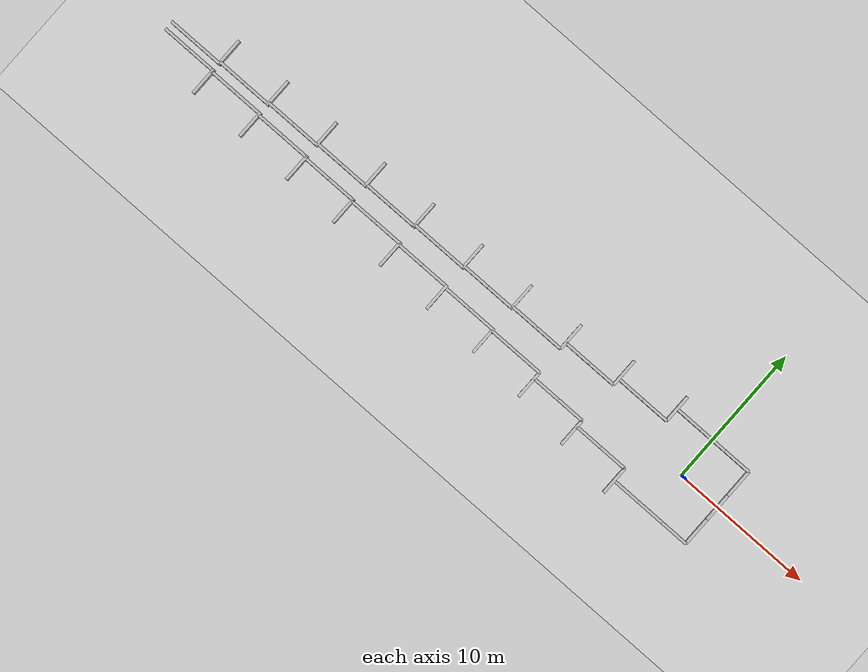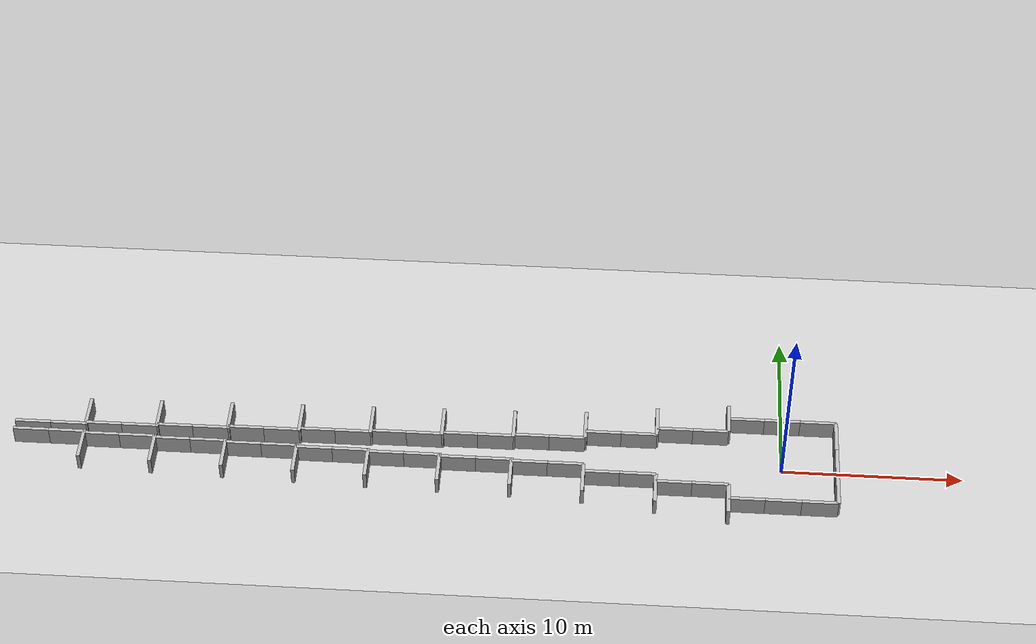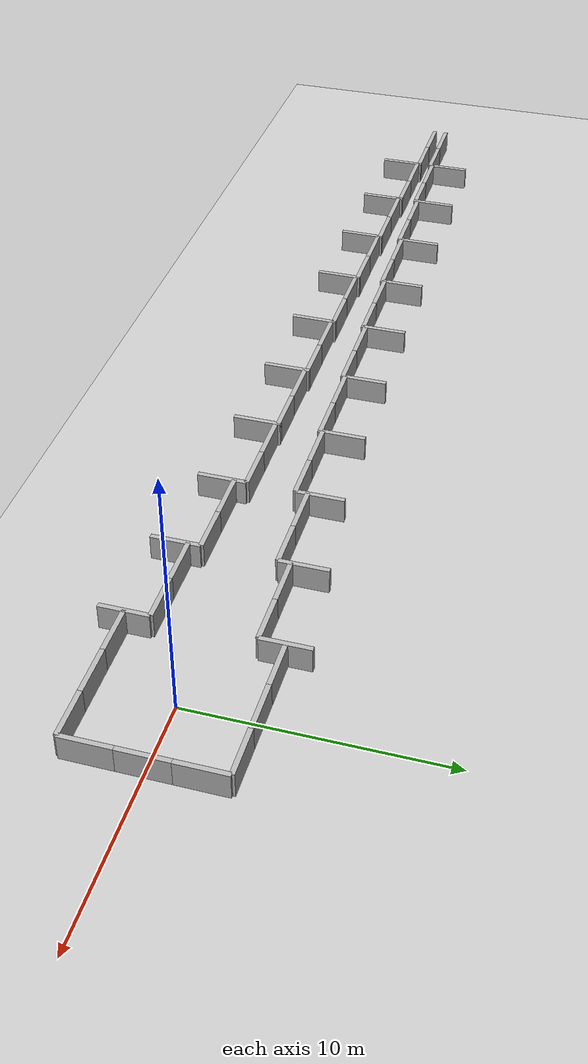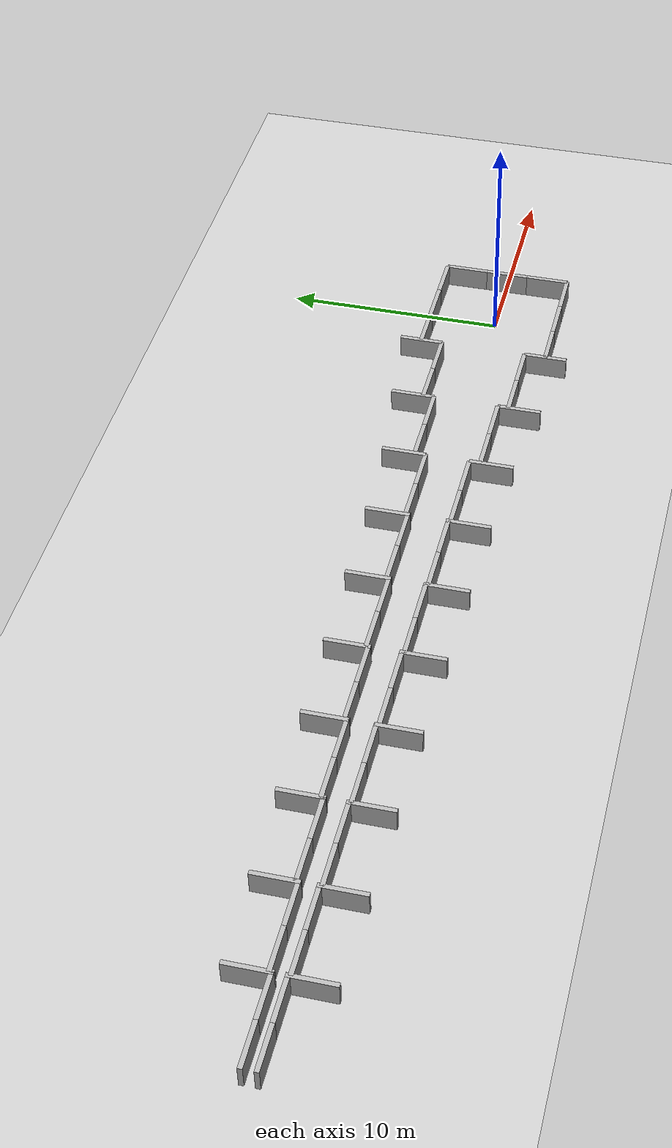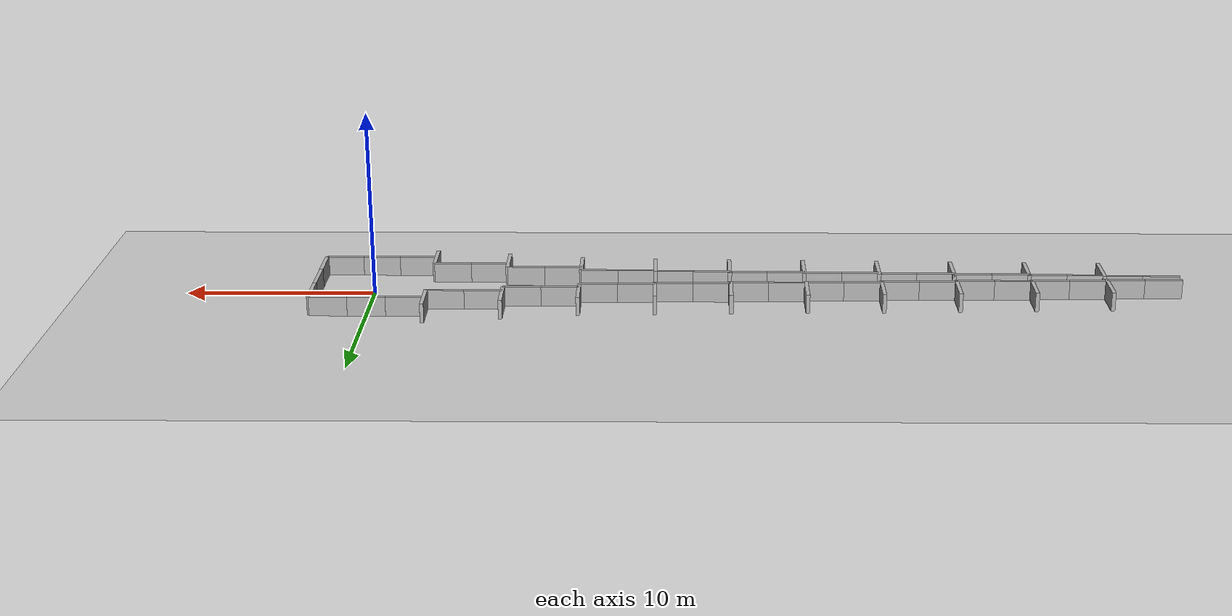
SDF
<sdf version="1.6">
 <world name="default">
  <model name="ground_plane">
   <static>1</static>
   <link name="link">
    <collision name="collision">
     <geometry><plane><normal>0 0 1</normal><size>100 100</size></plane></geometry>
     <surface>
      <contact><collide_bitmask>65535</collide_bitmask></contact>
      <friction><ode><mu>100</mu><mu2>50</mu2></ode></friction>
     </surface>
    </collision>
    <visual name="visual">
     <cast_shadows>0</cast_shadows>
     <geometry><plane><normal>0 0 1</normal><size>100 100</size></plane></geometry>
     <material>
      <script><uri>file://media/materials/scripts/gazebo.material</uri><name>Gazebo/Grey</name></script>
     </material>
    </visual>
   </link>
  </model>
  <gravity>0 0 -9.8</gravity>
  <magnetic_field>6e-06 2.3e-05 -4.2e-05</magnetic_field>
  <atmosphere type="adiabatic"/>
  <physics name="default_physics" default="0" type="ode">
   <max_step_size>0.001</max_step_size>
   <real_time_factor>1</real_time_factor>
   <real_time_update_rate>1000</real_time_update_rate>
  </physics>
  <scene><ambient>0.4 0.4 0.4 1</ambient><background>0.7 0.7 0.7 1</background><shadows>1</shadows></scene>
  <spherical_coordinates>
   <surface_model>EARTH_WGS84</surface_model>
   <latitude_deg>0</latitude_deg>
   <longitude_deg>0</longitude_deg>
   <elevation>0</elevation>
   <heading_deg>0</heading_deg>
  </spherical_coordinates>
  <light name="user_directional_light_0" type="directional">
   <pose>0.351978 -0.363043 1 0 -0 0</pose>
   <diffuse>0.5 0.5 0.5 1</diffuse>
   <specular>0.1 0.1 0.1 1</specular>
   <direction>0.1 0.1 -0.9</direction>
   <attenuation>
    <range>20</range>
    <constant>0.5</constant>
    <linear>0.01</linear>
    <quadratic>0.001</quadratic>
   </attenuation>
  </light>
  <model name="Color Tutorial Model">
   <static>1</static>
   <link name="grating">
    <collision name="body_collision"><geometry><box><size>2 0.2 2</size></box></geometry></collision>
    <visual name="body_visual">
     <geometry><box><size>2 0.2 2</size></box></geometry>
     <material>
      <script>
       <uri>/home/neuro/.gazebo/models/grating_wall/materials/scripts/</uri>
       <uri>/home/neuro/.gazebo/models/grating_wall/materials/scripts/</uri>
       <name>RepeatedTexture</name>
      </script>
     </material>
    </visual>
   </link>
   <pose>0 3 0 0 -0 0</pose>
  </model>
  <model name="Color Tutorial Model_clone">
   <static>1</static>
   <link name="grating">
    <collision name="body_collision"><geometry><box><size>2 0.2 2</size></box></geometry></collision>
    <visual name="body_visual">
     <geometry><box><size>2 0.2 2</size></box></geometry>
     <material>
      <script>
       <uri>/home/neuro/.gazebo/models/grating_wall/materials/scripts/</uri>
       <uri>/home/neuro/.gazebo/models/grating_wall/materials/scripts/</uri>
       <name>RepeatedTexture</name>
      </script>
     </material>
    </visual>
   </link>
   <pose>-2 3 0 0 -0 0</pose>
  </model>
  <model name="Color Tutorial Model_clone_0">
   <static>1</static>
   <link name="grating">
    <collision name="body_collision"><geometry><box><size>2 0.2 2</size></box></geometry></collision>
    <visual name="body_visual">
     <geometry><box><size>2 0.2 2</size></box></geometry>
     <material>
      <script>
       <uri>/home/neuro/.gazebo/models/grating_wall/materials/scripts/</uri>
       <uri>/home/neuro/.gazebo/models/grating_wall/materials/scripts/</uri>
       <name>RepeatedTexture</name>
      </script>
     </material>
    </visual>
   </link>
   <pose>2 3 0 0 -0 0</pose>
  </model>
  <model name="Color Tutorial Model_clone_1">
   <static>1</static>
   <link name="grating">
    <collision name="body_collision"><geometry><box><size>2 0.2 2</size></box></geometry></collision>
    <visual name="body_visual">
     <geometry><box><size>2 0.2 2</size></box></geometry>
     <material>
      <script>
       <uri>/home/neuro/.gazebo/models/grating_wall/materials/scripts/</uri>
       <uri>/home/neuro/.gazebo/models/grating_wall/materials/scripts/</uri>
       <name>RepeatedTexture</name>
      </script>
     </material>
    </visual>
   </link>
   <pose>0 -3 0 0 -0 0</pose>
  </model>
  <model name="Color Tutorial Model_clone_2">
   <static>1</static>
   <link name="grating">
    <collision name="body_collision"><geometry><box><size>2 0.2 2</size></box></geometry></collision>
    <visual name="body_visual">
     <geometry><box><size>2 0.2 2</size></box></geometry>
     <material>
      <script>
       <uri>/home/neuro/.gazebo/models/grating_wall/materials/scripts/</uri>
       <uri>/home/neuro/.gazebo/models/grating_wall/materials/scripts/</uri>
       <name>RepeatedTexture</name>
      </script>
     </material>
    </visual>
   </link>
   <pose>-2 -3 0 0 -0 0</pose>
  </model>
  <model name="Color Tutorial Model_clone_3">
   <static>1</static>
   <link name="grating">
    <collision name="body_collision"><geometry><box><size>2 0.2 2</size></box></geometry></collision>
    <visual name="body_visual">
     <geometry><box><size>2 0.2 2</size></box></geometry>
     <material>
      <script>
       <uri>/home/neuro/.gazebo/models/grating_wall/materials/scripts/</uri>
       <uri>/home/neuro/.gazebo/models/grating_wall/materials/scripts/</uri>
       <name>RepeatedTexture</name>
      </script>
     </material>
    </visual>
   </link>
   <pose>2 -3 0 0 -0 0</pose>
  </model>
  <model name="Color Tutorial Model_clone_4">
   <static>1</static>
   <link name="grating">
    <collision name="body_collision"><geometry><box><size>2 0.2 2</size></box></geometry></collision>
    <visual name="body_visual">
     <geometry><box><size>2 0.2 2</size></box></geometry>
     <material>
      <script>
       <uri>/home/neuro/.gazebo/models/grating_wall/materials/scripts/</uri>
       <uri>/home/neuro/.gazebo/models/grating_wall/materials/scripts/</uri>
       <name>RepeatedTexture</name>
      </script>
     </material>
    </visual>
   </link>
   <pose>-3 -3 0 0 -0 1.57</pose>
  </model>
  <model name="Color Tutorial Model_clone_4_clone">
   <static>1</static>
   <link name="grating">
    <collision name="body_collision"><geometry><box><size>2 0.2 2</size></box></geometry></collision>
    <visual name="body_visual">
     <geometry><box><size>2 0.2 2</size></box></geometry>
     <material>
      <script>
       <uri>/home/neuro/.gazebo/models/grating_wall/materials/scripts/</uri>
       <uri>/home/neuro/.gazebo/models/grating_wall/materials/scripts/</uri>
       <name>RepeatedTexture</name>
      </script>
     </material>
    </visual>
   </link>
   <pose>-4 2 0 0 0 -3.14159</pose>
  </model>
  <model name="Color Tutorial Model_clone_4_clone_0">
   <static>1</static>
   <link name="grating">
    <collision name="body_collision"><geometry><box><size>2 0.2 2</size></box></geometry></collision>
    <visual name="body_visual">
     <geometry><box><size>2 0.2 2</size></box></geometry>
     <material>
      <script>
       <uri>/home/neuro/.gazebo/models/grating_wall/materials/scripts/</uri>
       <uri>/home/neuro/.gazebo/models/grating_wall/materials/scripts/</uri>
       <name>RepeatedTexture</name>
      </script>
     </material>
    </visual>
   </link>
   <pose>-3 3 0 0 -0 1.5708</pose>
  </model>
  <model name="Color Tutorial Model_clone_4_clone_clone">
   <static>1</static>
   <link name="grating">
    <collision name="body_collision"><geometry><box><size>2 0.2 2</size></box></geometry></collision>
    <visual name="body_visual">
     <geometry><box><size>2 0.2 2</size></box></geometry>
     <material>
      <script>
       <uri>/home/neuro/.gazebo/models/grating_wall/materials/scripts/</uri>
       <uri>/home/neuro/.gazebo/models/grating_wall/materials/scripts/</uri>
       <name>RepeatedTexture</name>
      </script>
     </material>
    </visual>
   </link>
   <pose>3 -2 0 0 -0 1.5708</pose>
  </model>
  <model name="Color Tutorial Model_clone_4_clone_clone_0">
   <static>1</static>
   <link name="grating">
    <collision name="body_collision"><geometry><box><size>2 0.2 2</size></box></geometry></collision>
    <visual name="body_visual">
     <geometry><box><size>2 0.2 2</size></box></geometry>
     <material>
      <script>
       <uri>/home/neuro/.gazebo/models/grating_wall/materials/scripts/</uri>
       <uri>/home/neuro/.gazebo/models/grating_wall/materials/scripts/</uri>
       <name>RepeatedTexture</name>
      </script>
     </material>
    </visual>
   </link>
   <pose>3 0 0 0 -0 1.5708</pose>
  </model>
  <model name="Color Tutorial Model_clone_4_clone_clone_1">
   <static>1</static>
   <link name="grating">
    <collision name="body_collision"><geometry><box><size>2 0.2 2</size></box></geometry></collision>
    <visual name="body_visual">
     <geometry><box><size>2 0.2 2</size></box></geometry>
     <material>
      <script>
       <uri>/home/neuro/.gazebo/models/grating_wall/materials/scripts/</uri>
       <uri>/home/neuro/.gazebo/models/grating_wall/materials/scripts/</uri>
       <name>RepeatedTexture</name>
      </script>
     </material>
    </visual>
   </link>
   <pose>3 2 0 0 -0 1.5708</pose>
  </model>
  <model name="Color Tutorial Model_clone_4_clone_clone_2">
   <static>1</static>
   <link name="grating">
    <collision name="body_collision"><geometry><box><size>2 0.2 2</size></box></geometry></collision>
    <visual name="body_visual">
     <geometry><box><size>2 0.2 2</size></box></geometry>
     <material>
      <script>
       <uri>/home/neuro/.gazebo/models/grating_wall/materials/scripts/</uri>
       <uri>/home/neuro/.gazebo/models/grating_wall/materials/scripts/</uri>
       <name>RepeatedTexture</name>
      </script>
     </material>
    </visual>
   </link>
   <pose>-4 -2 0 0 0 -3.14159</pose>
  </model>
  <model name="Color Tutorial Model_clone_4_clone_clone_3">
   <static>1</static>
   <link name="grating">
    <collision name="body_collision"><geometry><box><size>2 0.2 2</size></box></geometry></collision>
    <visual name="body_visual">
     <geometry><box><size>2 0.2 2</size></box></geometry>
     <material>
      <script>
       <uri>/home/neuro/.gazebo/models/grating_wall/materials/scripts/</uri>
       <uri>/home/neuro/.gazebo/models/grating_wall/materials/scripts/</uri>
       <name>RepeatedTexture</name>
      </script>
     </material>
    </visual>
   </link>
   <pose>-6 -2 0 0 0 -3.14159</pose>
  </model>
  <model name="Color Tutorial Model_clone_4_clone_clone_4">
   <static>1</static>
   <link name="grating">
    <collision name="body_collision"><geometry><box><size>2 0.2 2</size></box></geometry></collision>
    <visual name="body_visual">
     <geometry><box><size>2 0.2 2</size></box></geometry>
     <material>
      <script>
       <uri>/home/neuro/.gazebo/models/grating_wall/materials/scripts/</uri>
       <uri>/home/neuro/.gazebo/models/grating_wall/materials/scripts/</uri>
       <name>RepeatedTexture</name>
      </script>
     </material>
    </visual>
   </link>
   <pose>-6 2 0 0 0 -3.14159</pose>
  </model>
  <model name="Color Tutorial Model_clone_4_clone_1">
   <static>1</static>
   <link name="grating">
    <collision name="body_collision"><geometry><box><size>2 0.2 2</size></box></geometry></collision>
    <visual name="body_visual">
     <geometry><box><size>2 0.2 2</size></box></geometry>
     <material>
      <script>
       <uri>/home/neuro/.gazebo/models/grating_wall/materials/scripts/</uri>
       <uri>/home/neuro/.gazebo/models/grating_wall/materials/scripts/</uri>
       <name>RepeatedTexture</name>
      </script>
     </material>
    </visual>
   </link>
   <pose>-7 -2.5 0 0 -0 1.57</pose>
  </model>
  <model name="Color Tutorial Model_clone_4_clone_2">
   <static>1</static>
   <link name="grating">
    <collision name="body_collision"><geometry><box><size>2 0.2 2</size></box></geometry></collision>
    <visual name="body_visual">
     <geometry><box><size>2 0.2 2</size></box></geometry>
     <material>
      <script>
       <uri>/home/neuro/.gazebo/models/grating_wall/materials/scripts/</uri>
       <uri>/home/neuro/.gazebo/models/grating_wall/materials/scripts/</uri>
       <name>RepeatedTexture</name>
      </script>
     </material>
    </visual>
   </link>
   <pose>-7 2.5 0 0 -0 1.57</pose>
  </model>
  <model name="Color Tutorial Model_clone_4_clone_clone_3_clone">
   <static>1</static>
   <link name="grating">
    <collision name="body_collision"><geometry><box><size>2 0.2 2</size></box></geometry></collision>
    <visual name="body_visual">
     <geometry><box><size>2 0.2 2</size></box></geometry>
     <material>
      <script>
       <uri>/home/neuro/.gazebo/models/grating_wall/materials/scripts/</uri>
       <uri>/home/neuro/.gazebo/models/grating_wall/materials/scripts/</uri>
       <name>RepeatedTexture</name>
      </script>
     </material>
    </visual>
   </link>
   <pose>-8 -1.5 0 0 0 -3.14159</pose>
  </model>
  <model name="Color Tutorial Model_clone_4_clone_clone_3_clone_0">
   <static>1</static>
   <link name="grating">
    <collision name="body_collision"><geometry><box><size>2 0.2 2</size></box></geometry></collision>
    <visual name="body_visual">
     <geometry><box><size>2 0.2 2</size></box></geometry>
     <material>
      <script>
       <uri>/home/neuro/.gazebo/models/grating_wall/materials/scripts/</uri>
       <uri>/home/neuro/.gazebo/models/grating_wall/materials/scripts/</uri>
       <name>RepeatedTexture</name>
      </script>
     </material>
    </visual>
   </link>
   <pose>-8 1.5 0 0 0 -3.14159</pose>
  </model>
  <model name="Color Tutorial Model_clone_4_clone_clone_3_clone_1">
   <static>1</static>
   <link name="grating">
    <collision name="body_collision"><geometry><box><size>2 0.2 2</size></box></geometry></collision>
    <visual name="body_visual">
     <geometry><box><size>2 0.2 2</size></box></geometry>
     <material>
      <script>
       <uri>/home/neuro/.gazebo/models/grating_wall/materials/scripts/</uri>
       <uri>/home/neuro/.gazebo/models/grating_wall/materials/scripts/</uri>
       <name>RepeatedTexture</name>
      </script>
     </material>
    </visual>
   </link>
   <pose>-10 1.5 0 0 0 -3.14159</pose>
  </model>
  <model name="Color Tutorial Model_clone_4_clone_clone_3_clone_2">
   <static>1</static>
   <link name="grating">
    <collision name="body_collision"><geometry><box><size>2 0.2 2</size></box></geometry></collision>
    <visual name="body_visual">
     <geometry><box><size>2 0.2 2</size></box></geometry>
     <material>
      <script>
       <uri>/home/neuro/.gazebo/models/grating_wall/materials/scripts/</uri>
       <uri>/home/neuro/.gazebo/models/grating_wall/materials/scripts/</uri>
       <name>RepeatedTexture</name>
      </script>
     </material>
    </visual>
   </link>
   <pose>-10 -1.5 0 0 0 -3.14159</pose>
  </model>
  <model name="Color Tutorial Model_clone_4_clone_1_clone">
   <static>1</static>
   <link name="grating">
    <collision name="body_collision"><geometry><box><size>2 0.2 2</size></box></geometry></collision>
    <visual name="body_visual">
     <geometry><box><size>2 0.2 2</size></box></geometry>
     <material>
      <script>
       <uri>/home/neuro/.gazebo/models/grating_wall/materials/scripts/</uri>
       <uri>/home/neuro/.gazebo/models/grating_wall/materials/scripts/</uri>
       <name>RepeatedTexture</name>
      </script>
     </material>
    </visual>
   </link>
   <pose>-11 -2 0 0 -0 1.57</pose>
  </model>
  <model name="Color Tutorial Model_clone_4_clone_1_clone_0">
   <static>1</static>
   <link name="grating">
    <collision name="body_collision"><geometry><box><size>2 0.2 2</size></box></geometry></collision>
    <visual name="body_visual">
     <geometry><box><size>2 0.2 2</size></box></geometry>
     <material>
      <script>
       <uri>/home/neuro/.gazebo/models/grating_wall/materials/scripts/</uri>
       <uri>/home/neuro/.gazebo/models/grating_wall/materials/scripts/</uri>
       <name>RepeatedTexture</name>
      </script>
     </material>
    </visual>
   </link>
   <pose>-11 2 0 0 -0 1.57</pose>
  </model>
  <model name="Color Tutorial Model_clone_4_clone_clone_3_clone_2_clone">
   <static>1</static>
   <link name="grating">
    <collision name="body_collision"><geometry><box><size>2 0.2 2</size></box></geometry></collision>
    <visual name="body_visual">
     <geometry><box><size>2 0.2 2</size></box></geometry>
     <material>
      <script>
       <uri>/home/neuro/.gazebo/models/grating_wall/materials/scripts/</uri>
       <uri>/home/neuro/.gazebo/models/grating_wall/materials/scripts/</uri>
       <name>RepeatedTexture</name>
      </script>
     </material>
    </visual>
   </link>
   <pose>-12 -1 0 0 0 -3.14159</pose>
  </model>
  <model name="Color Tutorial Model_clone_4_clone_clone_3_clone_2_clone_0">
   <static>1</static>
   <link name="grating">
    <collision name="body_collision"><geometry><box><size>2 0.2 2</size></box></geometry></collision>
    <visual name="body_visual">
     <geometry><box><size>2 0.2 2</size></box></geometry>
     <material>
      <script>
       <uri>/home/neuro/.gazebo/models/grating_wall/materials/scripts/</uri>
       <uri>/home/neuro/.gazebo/models/grating_wall/materials/scripts/</uri>
       <name>RepeatedTexture</name>
      </script>
     </material>
    </visual>
   </link>
   <pose>-12 1 0 0 0 -3.14159</pose>
  </model>
  <model name="Color Tutorial Model_clone_4_clone_clone_3_clone_2_clone_1">
   <static>1</static>
   <link name="grating">
    <collision name="body_collision"><geometry><box><size>2 0.2 2</size></box></geometry></collision>
    <visual name="body_visual">
     <geometry><box><size>2 0.2 2</size></box></geometry>
     <material>
      <script>
       <uri>/home/neuro/.gazebo/models/grating_wall/materials/scripts/</uri>
       <uri>/home/neuro/.gazebo/models/grating_wall/materials/scripts/</uri>
       <name>RepeatedTexture</name>
      </script>
     </material>
    </visual>
   </link>
   <pose>-14 -1 0 0 0 -3.14159</pose>
  </model>
  <model name="Color Tutorial Model_clone_4_clone_clone_3_clone_2_clone_2">
   <static>1</static>
   <link name="grating">
    <collision name="body_collision"><geometry><box><size>2 0.2 2</size></box></geometry></collision>
    <visual name="body_visual">
     <geometry><box><size>2 0.2 2</size></box></geometry>
     <material>
      <script>
       <uri>/home/neuro/.gazebo/models/grating_wall/materials/scripts/</uri>
       <uri>/home/neuro/.gazebo/models/grating_wall/materials/scripts/</uri>
       <name>RepeatedTexture</name>
      </script>
     </material>
    </visual>
   </link>
   <pose>-14 1 0 0 0 -3.14159</pose>
  </model>
  <model name="Color Tutorial Model_clone_4_clone_1_clone_clone">
   <static>1</static>
   <link name="grating">
    <collision name="body_collision"><geometry><box><size>2 0.2 2</size></box></geometry></collision>
    <visual name="body_visual">
     <geometry><box><size>2 0.2 2</size></box></geometry>
     <material>
      <script>
       <uri>/home/neuro/.gazebo/models/grating_wall/materials/scripts/</uri>
       <uri>/home/neuro/.gazebo/models/grating_wall/materials/scripts/</uri>
       <name>RepeatedTexture</name>
      </script>
     </material>
    </visual>
   </link>
   <pose>-15 -1.8 0 0 -0 1.57</pose>
  </model>
  <model name="Color Tutorial Model_clone_4_clone_1_clone_clone_0">
   <static>1</static>
   <link name="grating">
    <collision name="body_collision"><geometry><box><size>2 0.2 2</size></box></geometry></collision>
    <visual name="body_visual">
     <geometry><box><size>2 0.2 2</size></box></geometry>
     <material>
      <script>
       <uri>/home/neuro/.gazebo/models/grating_wall/materials/scripts/</uri>
       <uri>/home/neuro/.gazebo/models/grating_wall/materials/scripts/</uri>
       <name>RepeatedTexture</name>
      </script>
     </material>
    </visual>
   </link>
   <pose>-15 1.8 0 0 -0 1.57</pose>
  </model>
  <model name="Color Tutorial Model_clone_4_clone_clone_3_clone_2_clone_1_clone">
   <static>1</static>
   <link name="grating">
    <collision name="body_collision"><geometry><box><size>2 0.2 2</size></box></geometry></collision>
    <visual name="body_visual">
     <geometry><box><size>2 0.2 2</size></box></geometry>
     <material>
      <script>
       <uri>/home/neuro/.gazebo/models/grating_wall/materials/scripts/</uri>
       <uri>/home/neuro/.gazebo/models/grating_wall/materials/scripts/</uri>
       <name>RepeatedTexture</name>
      </script>
     </material>
    </visual>
   </link>
   <pose>-16 -0.9 0 0 0 -3.14159</pose>
  </model>
  <model name="Color Tutorial Model_clone_4_clone_clone_3_clone_2_clone_1_clone_0">
   <static>1</static>
   <link name="grating">
    <collision name="body_collision"><geometry><box><size>2 0.2 2</size></box></geometry></collision>
    <visual name="body_visual">
     <geometry><box><size>2 0.2 2</size></box></geometry>
     <material>
      <script>
       <uri>/home/neuro/.gazebo/models/grating_wall/materials/scripts/</uri>
       <uri>/home/neuro/.gazebo/models/grating_wall/materials/scripts/</uri>
       <name>RepeatedTexture</name>
      </script>
     </material>
    </visual>
   </link>
   <pose>-16 0.9 0 0 0 -3.14159</pose>
  </model>
  <model name="Color Tutorial Model_clone_4_clone_clone_3_clone_2_clone_1_clone_1">
   <static>1</static>
   <link name="grating">
    <collision name="body_collision"><geometry><box><size>2 0.2 2</size></box></geometry></collision>
    <visual name="body_visual">
     <geometry><box><size>2 0.2 2</size></box></geometry>
     <material>
      <script>
       <uri>/home/neuro/.gazebo/models/grating_wall/materials/scripts/</uri>
       <uri>/home/neuro/.gazebo/models/grating_wall/materials/scripts/</uri>
       <name>RepeatedTexture</name>
      </script>
     </material>
    </visual>
   </link>
   <pose>-18 -0.9 0 0 0 -3.14159</pose>
  </model>
  <model name="Color Tutorial Model_clone_4_clone_clone_3_clone_2_clone_1_clone_2">
   <static>1</static>
   <link name="grating">
    <collision name="body_collision"><geometry><box><size>2 0.2 2</size></box></geometry></collision>
    <visual name="body_visual">
     <geometry><box><size>2 0.2 2</size></box></geometry>
     <material>
      <script>
       <uri>/home/neuro/.gazebo/models/grating_wall/materials/scripts/</uri>
       <uri>/home/neuro/.gazebo/models/grating_wall/materials/scripts/</uri>
       <name>RepeatedTexture</name>
      </script>
     </material>
    </visual>
   </link>
   <pose>-18 0.9 0 0 0 -3.14159</pose>
  </model>
  <model name="Color Tutorial Model_clone_4_clone_1_clone_clone_0_clone">
   <static>1</static>
   <link name="grating">
    <collision name="body_collision"><geometry><box><size>2 0.2 2</size></box></geometry></collision>
    <visual name="body_visual">
     <geometry><box><size>2 0.2 2</size></box></geometry>
     <material>
      <script>
       <uri>/home/neuro/.gazebo/models/grating_wall/materials/scripts/</uri>
       <uri>/home/neuro/.gazebo/models/grating_wall/materials/scripts/</uri>
       <name>RepeatedTexture</name>
      </script>
     </material>
    </visual>
   </link>
   <pose>-19 1.7 0 0 -0 1.57</pose>
  </model>
  <model name="Color Tutorial Model_clone_4_clone_1_clone_clone_0_clone_0">
   <static>1</static>
   <link name="grating">
    <collision name="body_collision"><geometry><box><size>2 0.2 2</size></box></geometry></collision>
    <visual name="body_visual">
     <geometry><box><size>2 0.2 2</size></box></geometry>
     <material>
      <script>
       <uri>/home/neuro/.gazebo/models/grating_wall/materials/scripts/</uri>
       <uri>/home/neuro/.gazebo/models/grating_wall/materials/scripts/</uri>
       <name>RepeatedTexture</name>
      </script>
     </material>
    </visual>
   </link>
   <pose>-19 -1.7 0 0 -0 1.57</pose>
  </model>
  <model name="Color Tutorial Model_clone_4_clone_clone_3_clone_2_clone_1_clone_1_clone">
   <static>1</static>
   <link name="grating">
    <collision name="body_collision"><geometry><box><size>2 0.2 2</size></box></geometry></collision>
    <visual name="body_visual">
     <geometry><box><size>2 0.2 2</size></box></geometry>
     <material>
      <script>
       <uri>/home/neuro/.gazebo/models/grating_wall/materials/scripts/</uri>
       <uri>/home/neuro/.gazebo/models/grating_wall/materials/scripts/</uri>
       <name>RepeatedTexture</name>
      </script>
     </material>
    </visual>
   </link>
   <pose>-20 -0.8 0 0 0 -3.14159</pose>
  </model>
  <model name="Color Tutorial Model_clone_4_clone_clone_3_clone_2_clone_1_clone_1_clone_0">
   <static>1</static>
   <link name="grating">
    <collision name="body_collision"><geometry><box><size>2 0.2 2</size></box></geometry></collision>
    <visual name="body_visual">
     <geometry><box><size>2 0.2 2</size></box></geometry>
     <material>
      <script>
       <uri>/home/neuro/.gazebo/models/grating_wall/materials/scripts/</uri>
       <uri>/home/neuro/.gazebo/models/grating_wall/materials/scripts/</uri>
       <name>RepeatedTexture</name>
      </script>
     </material>
    </visual>
   </link>
   <pose>-20 0.8 0 0 0 -3.14159</pose>
  </model>
  <model name="Color Tutorial Model_clone_4_clone_clone_3_clone_2_clone_1_clone_1_clone_1">
   <static>1</static>
   <link name="grating">
    <collision name="body_collision"><geometry><box><size>2 0.2 2</size></box></geometry></collision>
    <visual name="body_visual">
     <geometry><box><size>2 0.2 2</size></box></geometry>
     <material>
      <script>
       <uri>/home/neuro/.gazebo/models/grating_wall/materials/scripts/</uri>
       <uri>/home/neuro/.gazebo/models/grating_wall/materials/scripts/</uri>
       <name>RepeatedTexture</name>
      </script>
     </material>
    </visual>
   </link>
   <pose>-22 -0.8 0 0 0 -3.14159</pose>
  </model>
  <model name="Color Tutorial Model_clone_4_clone_clone_3_clone_2_clone_1_clone_1_clone_2">
   <static>1</static>
   <link name="grating">
    <collision name="body_collision"><geometry><box><size>2 0.2 2</size></box></geometry></collision>
    <visual name="body_visual">
     <geometry><box><size>2 0.2 2</size></box></geometry>
     <material>
      <script>
       <uri>/home/neuro/.gazebo/models/grating_wall/materials/scripts/</uri>
       <uri>/home/neuro/.gazebo/models/grating_wall/materials/scripts/</uri>
       <name>RepeatedTexture</name>
      </script>
     </material>
    </visual>
   </link>
   <pose>-22 0.8 0 0 0 -3.14159</pose>
  </model>
  <model name="Color Tutorial Model_clone_4_clone_1_clone_clone_0_clone_clone_clone">
   <static>1</static>
   <link name="grating">
    <collision name="body_collision"><geometry><box><size>2 0.2 2</size></box></geometry></collision>
    <visual name="body_visual">
     <geometry><box><size>2 0.2 2</size></box></geometry>
     <material>
      <script>
       <uri>/home/neuro/.gazebo/models/grating_wall/materials/scripts/</uri>
       <uri>/home/neuro/.gazebo/models/grating_wall/materials/scripts/</uri>
       <name>RepeatedTexture</name>
      </script>
     </material>
    </visual>
   </link>
   <pose>-23 1.6 0 0 -0 1.57</pose>
  </model>
  <model name="Color Tutorial Model_clone_4_clone_1_clone_clone_0_clone_clone_clone_0">
   <static>1</static>
   <link name="grating">
    <collision name="body_collision"><geometry><box><size>2 0.2 2</size></box></geometry></collision>
    <visual name="body_visual">
     <geometry><box><size>2 0.2 2</size></box></geometry>
     <material>
      <script>
       <uri>/home/neuro/.gazebo/models/grating_wall/materials/scripts/</uri>
       <uri>/home/neuro/.gazebo/models/grating_wall/materials/scripts/</uri>
       <name>RepeatedTexture</name>
      </script>
     </material>
    </visual>
   </link>
   <pose>-23 -1.6 0 0 -0 1.57</pose>
  </model>
  <model name="Color Tutorial Model_clone_4_clone_clone_3_clone_2_clone_1_clone_1_clone_1_clone">
   <static>1</static>
   <link name="grating">
    <collision name="body_collision"><geometry><box><size>2 0.2 2</size></box></geometry></collision>
    <visual name="body_visual">
     <geometry><box><size>2 0.2 2</size></box></geometry>
     <material>
      <script>
       <uri>/home/neuro/.gazebo/models/grating_wall/materials/scripts/</uri>
       <uri>/home/neuro/.gazebo/models/grating_wall/materials/scripts/</uri>
       <name>RepeatedTexture</name>
      </script>
     </material>
    </visual>
   </link>
   <pose>-24 -0.7 0 0 0 -3.14159</pose>
  </model>
  <model name="Color Tutorial Model_clone_4_clone_clone_3_clone_2_clone_1_clone_1_clone_1_clone_0">
   <static>1</static>
   <link name="grating">
    <collision name="body_collision"><geometry><box><size>2 0.2 2</size></box></geometry></collision>
    <visual name="body_visual">
     <geometry><box><size>2 0.2 2</size></box></geometry>
     <material>
      <script>
       <uri>/home/neuro/.gazebo/models/grating_wall/materials/scripts/</uri>
       <uri>/home/neuro/.gazebo/models/grating_wall/materials/scripts/</uri>
       <name>RepeatedTexture</name>
      </script>
     </material>
    </visual>
   </link>
   <pose>-24 0.7 0 0 0 -3.14159</pose>
  </model>
  <model name="Color Tutorial Model_clone_4_clone_clone_3_clone_2_clone_1_clone_1_clone_1_clone_1">
   <static>1</static>
   <link name="grating">
    <collision name="body_collision"><geometry><box><size>2 0.2 2</size></box></geometry></collision>
    <visual name="body_visual">
     <geometry><box><size>2 0.2 2</size></box></geometry>
     <material>
      <script>
       <uri>/home/neuro/.gazebo/models/grating_wall/materials/scripts/</uri>
       <uri>/home/neuro/.gazebo/models/grating_wall/materials/scripts/</uri>
       <name>RepeatedTexture</name>
      </script>
     </material>
    </visual>
   </link>
   <pose>-26 -0.7 0 0 0 -3.14159</pose>
  </model>
  <model name="Color Tutorial Model_clone_4_clone_clone_3_clone_2_clone_1_clone_1_clone_1_clone_2">
   <static>1</static>
   <link name="grating">
    <collision name="body_collision"><geometry><box><size>2 0.2 2</size></box></geometry></collision>
    <visual name="body_visual">
     <geometry><box><size>2 0.2 2</size></box></geometry>
     <material>
      <script>
       <uri>/home/neuro/.gazebo/models/grating_wall/materials/scripts/</uri>
       <uri>/home/neuro/.gazebo/models/grating_wall/materials/scripts/</uri>
       <name>RepeatedTexture</name>
      </script>
     </material>
    </visual>
   </link>
   <pose>-26 0.7 0 0 0 -3.14159</pose>
  </model>
  <model name="Color Tutorial Model_clone_4_clone_1_clone_clone_0_clone_clone_clone_0_clone">
   <static>1</static>
   <link name="grating">
    <collision name="body_collision"><geometry><box><size>2 0.2 2</size></box></geometry></collision>
    <visual name="body_visual">
     <geometry><box><size>2 0.2 2</size></box></geometry>
     <material>
      <script>
       <uri>/home/neuro/.gazebo/models/grating_wall/materials/scripts/</uri>
       <uri>/home/neuro/.gazebo/models/grating_wall/materials/scripts/</uri>
       <name>RepeatedTexture</name>
      </script>
     </material>
    </visual>
   </link>
   <pose>-27 -1.5 0 0 -0 1.57</pose>
  </model>
  <model name="Color Tutorial Model_clone_4_clone_1_clone_clone_0_clone_clone_clone_0_clone_0">
   <static>1</static>
   <link name="grating">
    <collision name="body_collision"><geometry><box><size>2 0.2 2</size></box></geometry></collision>
    <visual name="body_visual">
     <geometry><box><size>2 0.2 2</size></box></geometry>
     <material>
      <script>
       <uri>/home/neuro/.gazebo/models/grating_wall/materials/scripts/</uri>
       <uri>/home/neuro/.gazebo/models/grating_wall/materials/scripts/</uri>
       <name>RepeatedTexture</name>
      </script>
     </material>
    </visual>
   </link>
   <pose>-27.0024 1.5 0 0 -0 1.57</pose>
  </model>
  <model name="Color Tutorial Model_clone_4_clone_clone_3_clone_2_clone_1_clone_1_clone_1_clone_1_clone">
   <static>1</static>
   <link name="grating">
    <collision name="body_collision"><geometry><box><size>2 0.2 2</size></box></geometry></collision>
    <visual name="body_visual">
     <geometry><box><size>2 0.2 2</size></box></geometry>
     <material>
      <script>
       <uri>/home/neuro/.gazebo/models/grating_wall/materials/scripts/</uri>
       <uri>/home/neuro/.gazebo/models/grating_wall/materials/scripts/</uri>
       <name>RepeatedTexture</name>
      </script>
     </material>
    </visual>
   </link>
   <pose>-28 -0.6 0 0 0 -3.14159</pose>
  </model>
  <model name="Color Tutorial Model_clone_4_clone_clone_3_clone_2_clone_1_clone_1_clone_1_clone_1_clone_0">
   <static>1</static>
   <link name="grating">
    <collision name="body_collision"><geometry><box><size>2 0.2 2</size></box></geometry></collision>
    <visual name="body_visual">
     <geometry><box><size>2 0.2 2</size></box></geometry>
     <material>
      <script>
       <uri>/home/neuro/.gazebo/models/grating_wall/materials/scripts/</uri>
       <uri>/home/neuro/.gazebo/models/grating_wall/materials/scripts/</uri>
       <name>RepeatedTexture</name>
      </script>
     </material>
    </visual>
   </link>
   <pose>-28 0.6 0 0 0 -3.14159</pose>
  </model>
  <model name="Color Tutorial Model_clone_4_clone_clone_3_clone_2_clone_1_clone_1_clone_1_clone_1_clone_1">
   <static>1</static>
   <link name="grating">
    <collision name="body_collision"><geometry><box><size>2 0.2 2</size></box></geometry></collision>
    <visual name="body_visual">
     <geometry><box><size>2 0.2 2</size></box></geometry>
     <material>
      <script>
       <uri>/home/neuro/.gazebo/models/grating_wall/materials/scripts/</uri>
       <uri>/home/neuro/.gazebo/models/grating_wall/materials/scripts/</uri>
       <name>RepeatedTexture</name>
      </script>
     </material>
    </visual>
   </link>
   <pose>-30 0.6 0 0 0 -3.14159</pose>
  </model>
  <model name="Color Tutorial Model_clone_4_clone_clone_3_clone_2_clone_1_clone_1_clone_1_clone_1_clone_2">
   <static>1</static>
   <link name="grating">
    <collision name="body_collision"><geometry><box><size>2 0.2 2</size></box></geometry></collision>
    <visual name="body_visual">
     <geometry><box><size>2 0.2 2</size></box></geometry>
     <material>
      <script>
       <uri>/home/neuro/.gazebo/models/grating_wall/materials/scripts/</uri>
       <uri>/home/neuro/.gazebo/models/grating_wall/materials/scripts/</uri>
       <name>RepeatedTexture</name>
      </script>
     </material>
    </visual>
   </link>
   <pose>-30 -0.6 0 0 0 -3.14159</pose>
  </model>
  <model name="Color Tutorial Model_clone_4_clone_1_clone_clone_0_clone_clone_clone_0_clone_0_clone">
   <static>1</static>
   <link name="grating">
    <collision name="body_collision"><geometry><box><size>2 0.2 2</size></box></geometry></collision>
    <visual name="body_visual">
     <geometry><box><size>2 0.2 2</size></box></geometry>
     <material>
      <script>
       <uri>/home/neuro/.gazebo/models/grating_wall/materials/scripts/</uri>
       <uri>/home/neuro/.gazebo/models/grating_wall/materials/scripts/</uri>
       <name>RepeatedTexture</name>
      </script>
     </material>
    </visual>
   </link>
   <pose>-31 1.4 0 0 -0 1.57</pose>
  </model>
  <model name="Color Tutorial Model_clone_4_clone_1_clone_clone_0_clone_clone_clone_0_clone_0_clone_0">
   <static>1</static>
   <link name="grating">
    <collision name="body_collision"><geometry><box><size>2 0.2 2</size></box></geometry></collision>
    <visual name="body_visual">
     <geometry><box><size>2 0.2 2</size></box></geometry>
     <material>
      <script>
       <uri>/home/neuro/.gazebo/models/grating_wall/materials/scripts/</uri>
       <uri>/home/neuro/.gazebo/models/grating_wall/materials/scripts/</uri>
       <name>RepeatedTexture</name>
      </script>
     </material>
    </visual>
   </link>
   <pose>-31 -1.4 0 0 -0 1.57</pose>
  </model>
  <model name="Color Tutorial Model_clone_4_clone_clone_3_clone_2_clone_1_clone_1_clone_1_clone_1_clone_2_clone">
   <static>1</static>
   <link name="grating">
    <collision name="body_collision"><geometry><box><size>2 0.2 2</size></box></geometry></collision>
    <visual name="body_visual">
     <geometry><box><size>2 0.2 2</size></box></geometry>
     <material>
      <script>
       <uri>/home/neuro/.gazebo/models/grating_wall/materials/scripts/</uri>
       <uri>/home/neuro/.gazebo/models/grating_wall/materials/scripts/</uri>
       <name>RepeatedTexture</name>
      </script>
     </material>
    </visual>
   </link>
   <pose>-32 -0.5 0 0 0 -3.14159</pose>
  </model>
  <model name="Color Tutorial Model_clone_4_clone_clone_3_clone_2_clone_1_clone_1_clone_1_clone_1_clone_2_clone_0">
   <static>1</static>
   <link name="grating">
    <collision name="body_collision"><geometry><box><size>2 0.2 2</size></box></geometry></collision>
    <visual name="body_visual">
     <geometry><box><size>2 0.2 2</size></box></geometry>
     <material>
      <script>
       <uri>/home/neuro/.gazebo/models/grating_wall/materials/scripts/</uri>
       <uri>/home/neuro/.gazebo/models/grating_wall/materials/scripts/</uri>
       <name>RepeatedTexture</name>
      </script>
     </material>
    </visual>
   </link>
   <pose>-32 0.5 0 0 0 -3.14159</pose>
  </model>
  <model name="Color Tutorial Model_clone_4_clone_clone_3_clone_2_clone_1_clone_1_clone_1_clone_1_clone_2_clone_1">
   <static>1</static>
   <link name="grating">
    <collision name="body_collision"><geometry><box><size>2 0.2 2</size></box></geometry></collision>
    <visual name="body_visual">
     <geometry><box><size>2 0.2 2</size></box></geometry>
     <material>
      <script>
       <uri>/home/neuro/.gazebo/models/grating_wall/materials/scripts/</uri>
       <uri>/home/neuro/.gazebo/models/grating_wall/materials/scripts/</uri>
       <name>RepeatedTexture</name>
      </script>
     </material>
    </visual>
   </link>
   <pose>-34 -0.5 0 0 0 -3.14159</pose>
  </model>
  <model name="Color Tutorial Model_clone_4_clone_clone_3_clone_2_clone_1_clone_1_clone_1_clone_1_clone_2_clone_2">
   <static>1</static>
   <link name="grating">
    <collision name="body_collision"><geometry><box><size>2 0.2 2</size></box></geometry></collision>
    <visual name="body_visual">
     <geometry><box><size>2 0.2 2</size></box></geometry>
     <material>
      <script>
       <uri>/home/neuro/.gazebo/models/grating_wall/materials/scripts/</uri>
       <uri>/home/neuro/.gazebo/models/grating_wall/materials/scripts/</uri>
       <name>RepeatedTexture</name>
      </script>
     </material>
    </visual>
   </link>
   <pose>-34 0.5 0 0 0 -3.14159</pose>
  </model>
  <model name="Color Tutorial Model_clone_4_clone_1_clone_clone_0_clone_clone_clone_0_clone_0_clone_0_clone">
   <static>1</static>
   <link name="grating">
    <collision name="body_collision"><geometry><box><size>2 0.2 2</size></box></geometry></collision>
    <visual name="body_visual">
     <geometry><box><size>2 0.2 2</size></box></geometry>
     <material>
      <script>
       <uri>/home/neuro/.gazebo/models/grating_wall/materials/scripts/</uri>
       <uri>/home/neuro/.gazebo/models/grating_wall/materials/scripts/</uri>
       <name>RepeatedTexture</name>
      </script>
     </material>
    </visual>
   </link>
   <pose>-35 -1.3 0 0 -0 1.57</pose>
  </model>
  <model name="Color Tutorial Model_clone_4_clone_1_clone_clone_0_clone_clone_clone_0_clone_0_clone_0_clone_0">
   <static>1</static>
   <link name="grating">
    <collision name="body_collision"><geometry><box><size>2 0.2 2</size></box></geometry></collision>
    <visual name="body_visual">
     <geometry><box><size>2 0.2 2</size></box></geometry>
     <material>
      <script>
       <uri>/home/neuro/.gazebo/models/grating_wall/materials/scripts/</uri>
       <uri>/home/neuro/.gazebo/models/grating_wall/materials/scripts/</uri>
       <name>RepeatedTexture</name>
      </script>
     </material>
    </visual>
   </link>
   <pose>-35 1.3 0 0 -0 1.57</pose>
  </model>
  <model name="Color Tutorial Model_clone_4_clone_clone_3_clone_2_clone_1_clone_1_clone_1_clone_1_clone_2_clone_1_clone">
   <static>1</static>
   <link name="grating">
    <collision name="body_collision"><geometry><box><size>2 0.2 2</size></box></geometry></collision>
    <visual name="body_visual">
     <geometry><box><size>2 0.2 2</size></box></geometry>
     <material>
      <script>
       <uri>/home/neuro/.gazebo/models/grating_wall/materials/scripts/</uri>
       <uri>/home/neuro/.gazebo/models/grating_wall/materials/scripts/</uri>
       <name>RepeatedTexture</name>
      </script>
     </material>
    </visual>
   </link>
   <pose>-36 -0.4 0 0 0 -3.14159</pose>
  </model>
  <model name="Color Tutorial Model_clone_4_clone_clone_3_clone_2_clone_1_clone_1_clone_1_clone_1_clone_2_clone_1_clone_0">
   <static>1</static>
   <link name="grating">
    <collision name="body_collision"><geometry><box><size>2 0.2 2</size></box></geometry></collision>
    <visual name="body_visual">
     <geometry><box><size>2 0.2 2</size></box></geometry>
     <material>
      <script>
       <uri>/home/neuro/.gazebo/models/grating_wall/materials/scripts/</uri>
       <uri>/home/neuro/.gazebo/models/grating_wall/materials/scripts/</uri>
       <name>RepeatedTexture</name>
      </script>
     </material>
    </visual>
   </link>
   <pose>-36 0.4 0 0 0 -3.14159</pose>
  </model>
  <model name="Color Tutorial Model_clone_4_clone_clone_3_clone_2_clone_1_clone_1_clone_1_clone_1_clone_2_clone_1_clone_1">
   <static>1</static>
   <link name="grating">
    <collision name="body_collision"><geometry><box><size>2 0.2 2</size></box></geometry></collision>
    <visual name="body_visual">
     <geometry><box><size>2 0.2 2</size></box></geometry>
     <material>
      <script>
       <uri>/home/neuro/.gazebo/models/grating_wall/materials/scripts/</uri>
       <uri>/home/neuro/.gazebo/models/grating_wall/materials/scripts/</uri>
       <name>RepeatedTexture</name>
      </script>
     </material>
    </visual>
   </link>
   <pose>-38 -0.4 0 0 0 -3.14159</pose>
  </model>
  <model name="Color Tutorial Model_clone_4_clone_clone_3_clone_2_clone_1_clone_1_clone_1_clone_1_clone_2_clone_1_clone_2">
   <static>1</static>
   <link name="grating">
    <collision name="body_collision"><geometry><box><size>2 0.2 2</size></box></geometry></collision>
    <visual name="body_visual">
     <geometry><box><size>2 0.2 2</size></box></geometry>
     <material>
      <script>
       <uri>/home/neuro/.gazebo/models/grating_wall/materials/scripts/</uri>
       <uri>/home/neuro/.gazebo/models/grating_wall/materials/scripts/</uri>
       <name>RepeatedTexture</name>
      </script>
     </material>
    </visual>
   </link>
   <pose>-38 0.4 0 0 0 -3.14159</pose>
  </model>
  <model name="Color Tutorial Model_clone_4_clone_1_clone_clone_0_clone_clone_clone_0_clone_0_clone_0_clone_clone">
   <static>1</static>
   <link name="grating">
    <collision name="body_collision"><geometry><box><size>2 0.2 2</size></box></geometry></collision>
    <visual name="body_visual">
     <geometry><box><size>2 0.2 2</size></box></geometry>
     <material>
      <script>
       <uri>/home/neuro/.gazebo/models/grating_wall/materials/scripts/</uri>
       <uri>/home/neuro/.gazebo/models/grating_wall/materials/scripts/</uri>
       <name>RepeatedTexture</name>
      </script>
     </material>
    </visual>
   </link>
   <pose>-39 -1.2 0 0 -0 1.57</pose>
  </model>
  <model name="Color Tutorial Model_clone_4_clone_1_clone_clone_0_clone_clone_clone_0_clone_0_clone_0_clone_clone_0">
   <static>1</static>
   <link name="grating">
    <collision name="body_collision"><geometry><box><size>2 0.2 2</size></box></geometry></collision>
    <visual name="body_visual">
     <geometry><box><size>2 0.2 2</size></box></geometry>
     <material>
      <script>
       <uri>/home/neuro/.gazebo/models/grating_wall/materials/scripts/</uri>
       <uri>/home/neuro/.gazebo/models/grating_wall/materials/scripts/</uri>
       <name>RepeatedTexture</name>
      </script>
     </material>
    </visual>
   </link>
   <pose>-39 1.2 0 0 -0 1.57</pose>
  </model>
  <model name="Color Tutorial Model_clone_4_clone_clone_3_clone_2_clone_1_clone_1_clone_1_clone_1_clone_2_clone_1_clone_clone">
   <static>1</static>
   <link name="grating">
    <collision name="body_collision"><geometry><box><size>2 0.2 2</size></box></geometry></collision>
    <visual name="body_visual">
     <geometry><box><size>2 0.2 2</size></box></geometry>
     <material>
      <script>
       <uri>/home/neuro/.gazebo/models/grating_wall/materials/scripts/</uri>
       <uri>/home/neuro/.gazebo/models/grating_wall/materials/scripts/</uri>
       <name>RepeatedTexture</name>
      </script>
     </material>
    </visual>
   </link>
   <pose>-40 -0.3 0 0 0 -3.14159</pose>
  </model>
  <model name="Color Tutorial Model_clone_4_clone_clone_3_clone_2_clone_1_clone_1_clone_1_clone_1_clone_2_clone_1_clone_clone_0">
   <static>1</static>
   <link name="grating">
    <collision name="body_collision"><geometry><box><size>2 0.2 2</size></box></geometry></collision>
    <visual name="body_visual">
     <geometry><box><size>2 0.2 2</size></box></geometry>
     <material>
      <script>
       <uri>/home/neuro/.gazebo/models/grating_wall/materials/scripts/</uri>
       <uri>/home/neuro/.gazebo/models/grating_wall/materials/scripts/</uri>
       <name>RepeatedTexture</name>
      </script>
     </material>
    </visual>
   </link>
   <pose>-40 0.3 0 0 0 -3.14159</pose>
  </model>
  <model name="Color Tutorial Model_clone_4_clone_clone_3_clone_2_clone_1_clone_1_clone_1_clone_1_clone_2_clone_1_clone_clone_1">
   <static>1</static>
   <link name="grating">
    <collision name="body_collision"><geometry><box><size>2 0.2 2</size></box></geometry></collision>
    <visual name="body_visual">
     <geometry><box><size>2 0.2 2</size></box></geometry>
     <material>
      <script>
       <uri>/home/neuro/.gazebo/models/grating_wall/materials/scripts/</uri>
       <uri>/home/neuro/.gazebo/models/grating_wall/materials/scripts/</uri>
       <name>RepeatedTexture</name>
      </script>
     </material>
    </visual>
   </link>
   <pose>-42 -0.3 0 0 0 -3.14159</pose>
  </model>
  <model name="Color Tutorial Model_clone_4_clone_clone_3_clone_2_clone_1_clone_1_clone_1_clone_1_clone_2_clone_1_clone_clone_2">
   <static>1</static>
   <link name="grating">
    <collision name="body_collision"><geometry><box><size>2 0.2 2</size></box></geometry></collision>
    <visual name="body_visual">
     <geometry><box><size>2 0.2 2</size></box></geometry>
     <material>
      <script>
       <uri>/home/neuro/.gazebo/models/grating_wall/materials/scripts/</uri>
       <uri>/home/neuro/.gazebo/models/grating_wall/materials/scripts/</uri>
       <name>RepeatedTexture</name>
      </script>
     </material>
    </visual>
   </link>
   <pose>-42 0.3 0 0 0 -3.14159</pose>
  </model>
 </world>
</sdf>
